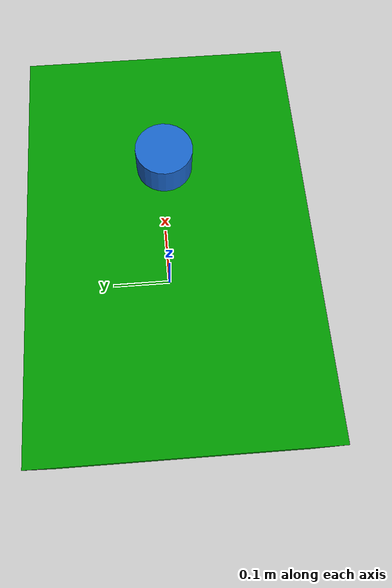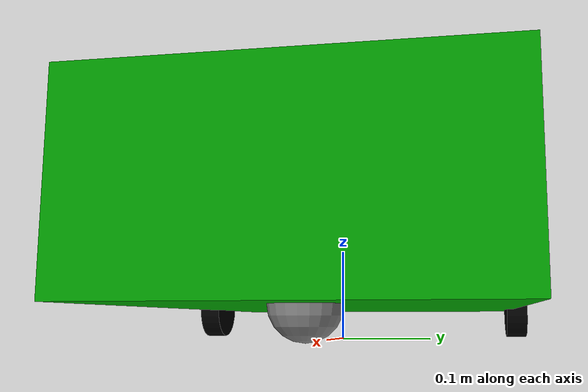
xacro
<?xml version="1.0"?>
<robot name="my_robot" xmlns:xacro="http://www.ros.org/wiki/xacro">

  <!-- ===================== PROPERTIES ===================== -->
  <!-- Change these numbers to resize your robot -->
  <xacro:property name="base_length"   value="0.6"/>
  <xacro:property name="base_width"    value="0.4"/>
  <xacro:property name="base_height"   value="0.2"/>
  <xacro:property name="wheel_radius"  value="0.035"/>
  <xacro:property name="wheel_width"   value="0.025"/>
  <xacro:property name="caster_radius" value="0.035"/>

  <!-- ===================== MATERIALS ===================== -->
  <material name="green"> <color rgba="0 0.6 0 1"/>      </material>
  <material name="black"> <color rgba="0 0 0 1"/>        </material>
  <material name="blue">  <color rgba="0.1 0.4 0.8 1"/>  </material>
  <material name="grey">  <color rgba="0.5 0.5 0.5 1"/>  </material>

  <!-- ===================== BASE FOOTPRINT ===================== -->
  <link name="base_footprint"/>

  <joint name="base_footprint_joint" type="fixed">
    <parent link="base_footprint"/>
    <child  link="base_link"/>
    <origin xyz="0 0 ${wheel_radius}" rpy="0 0 0"/>
  </joint>

  <!-- ===================== CHASSIS ===================== -->
  <link name="base_link">
    <visual>
      <geometry><box size="${base_length} ${base_width} ${base_height}"/></geometry>
      <origin xyz="0 0 ${base_height/2}" rpy="0 0 0"/>
      <material name="green"/>
    </visual>
    <!-- GAZEBO NEEDS THIS: collision shape -->
    <collision>
      <geometry><box size="${base_length} ${base_width} ${base_height}"/></geometry>
      <origin xyz="0 0 ${base_height/2}" rpy="0 0 0"/>
    </collision>
    <!-- GAZEBO NEEDS THIS: mass and inertia -->
    <inertial>
      <origin xyz="0 0 ${base_height/2}" rpy="0 0 0"/>
      <mass value="1.5"/>
      <inertia
        ixx="${(1.5/12)*(base_width*base_width + base_height*base_height)}"
        ixy="0" ixz="0"
        iyy="${(1.5/12)*(base_length*base_length + base_height*base_height)}"
        iyz="0"
        izz="${(1.5/12)*(base_length*base_length + base_width*base_width)}"/>
    </inertial>
  </link>

  <!-- ===================== WHEEL MACRO ===================== -->
  <!-- Instead of copy-pasting wheel code twice, we use a macro -->
  <xacro:macro name="wheel" params="name y_reflect">

    <link name="${name}_wheel">
      <visual>
        <geometry><cylinder radius="${wheel_radius}" length="${wheel_width}"/></geometry>
        <origin xyz="0 0 0" rpy="${pi/2} 0 0"/>
        <material name="black"/>
      </visual>
      <collision>
        <geometry><cylinder radius="${wheel_radius}" length="${wheel_width}"/></geometry>
        <origin xyz="0 0 0" rpy="${pi/2} 0 0"/>
      </collision>
      <inertial>
        <mass value="0.1"/>
        <inertia
          ixx="${(0.1/12)*(3*wheel_radius*wheel_radius + wheel_width*wheel_width)}"
          ixy="0" ixz="0"
          iyy="${(0.1/12)*(3*wheel_radius*wheel_radius + wheel_width*wheel_width)}"
          iyz="0"
          izz="${(0.1/2)*wheel_radius*wheel_radius}"/>
      </inertial>
    </link>

    <joint name="base_${name}_wheel_joint" type="continuous">
      <parent link="base_link"/>
      <child  link="${name}_wheel"/>
      <origin xyz="-0.15 ${y_reflect*(base_width/2 + 0.005)} 0" rpy="0 0 0"/>
      <axis xyz="0 1 0"/>
    </joint>

  </xacro:macro>

  <!-- Call the macro for left and right -->
  <xacro:wheel name="left"  y_reflect=" 1"/>
  <xacro:wheel name="right" y_reflect="-1"/>

  <!-- ===================== FRONT CASTER ===================== -->
  <link name="front_caster">
    <visual>
      <geometry><sphere radius="${caster_radius}"/></geometry>
      <material name="grey"/>
    </visual>
    <collision>
      <geometry><sphere radius="${caster_radius}"/></geometry>
    </collision>
    <inertial>
      <mass value="0.05"/>
      <inertia
        ixx="${(2.0/5)*0.05*caster_radius*caster_radius}" ixy="0" ixz="0"
        iyy="${(2.0/5)*0.05*caster_radius*caster_radius}" iyz="0"
        izz="${(2.0/5)*0.05*caster_radius*caster_radius}"/>
    </inertial>
  </link>

  <joint name="front_caster_joint" type="fixed">
    <parent link="base_link"/>
    <child  link="front_caster"/>
    <origin xyz="0.20 0 0" rpy="0 0 0"/>
  </joint>

  <!-- ===================== LIDAR ===================== -->
  <link name="lidar_link">
    <visual>
      <geometry><cylinder radius="0.04" length="0.05"/></geometry>
      <material name="blue"/>
    </visual>
    <collision>
      <geometry><cylinder radius="0.04" length="0.05"/></geometry>
    </collision>
    <inertial>
      <mass value="0.1"/>
      <inertia ixx="0.00001" ixy="0" ixz="0"
               iyy="0.00001" iyz="0"
               izz="0.00001"/>
    </inertial>
  </link>

  <joint name="lidar_joint" type="fixed">
    <parent link="base_link"/>
    <child  link="lidar_link"/>
    <origin xyz="0.10 0 ${base_height + 0.03}" rpy="0 0 0"/>
  </joint>

  <!-- ===================== GAZEBO PLUGINS ===================== -->

  <!-- Plugin 1: Differential Drive (makes robot move with cmd_vel) -->
  <gazebo>
    <plugin name="diff_drive" filename="libgazebo_ros_diff_drive.so">
      <left_joint>base_left_wheel_joint</left_joint>
      <right_joint>base_right_wheel_joint</right_joint>
      <wheel_separation>0.455</wheel_separation>
      <wheel_diameter>0.07</wheel_diameter>
      <max_wheel_torque>20</max_wheel_torque>
      <max_wheel_acceleration>1.0</max_wheel_acceleration>
      <command_topic>cmd_vel</command_topic>
      <odometry_topic>odom</odometry_topic>
      <odometry_frame>odom</odometry_frame>
      <robot_base_frame>base_footprint</robot_base_frame>
      <publish_odom>true</publish_odom>
      <publish_odom_tf>true</publish_odom_tf>
      <publish_wheel_tf>false</publish_wheel_tf>
    </plugin>
  </gazebo>

  <!-- Plugin 2: Lidar Sensor (publishes /scan for SLAM) -->
  <gazebo reference="lidar_link">
    <sensor name="lidar" type="ray">
      <always_on>true</always_on>
      <visualize>true</visualize>
      <update_rate>10</update_rate>
      <ray>
        <!-- AFTER — full 360° guaranteed -->
      <scan>
        <horizontal>
          <samples>360</samples>
          <resolution>1</resolution>
          <min_angle>-3.14159265</min_angle>
          <max_angle> 3.14159265</max_angle>
        </horizontal>
      </scan>
        <range>
          <min>0.12</min>
          <max>3.5</max>
          <resolution>0.01</resolution>
        </range>
      </ray>
      <plugin name="lidar_plugin" filename="libgazebo_ros_ray_sensor.so">
        <ros>
          <remapping>~/out:=scan</remapping>
        </ros>
        <output_type>sensor_msgs/LaserScan</output_type>
        <frame_name>lidar_link</frame_name>
      </plugin>
    </sensor>
  </gazebo>

  <!-- Caster wheel friction = 0 so it slides freely -->
  <gazebo reference="front_caster">
    <mu1>0.0</mu1>
    <mu2>0.0</mu2>
  </gazebo>

</robot>
